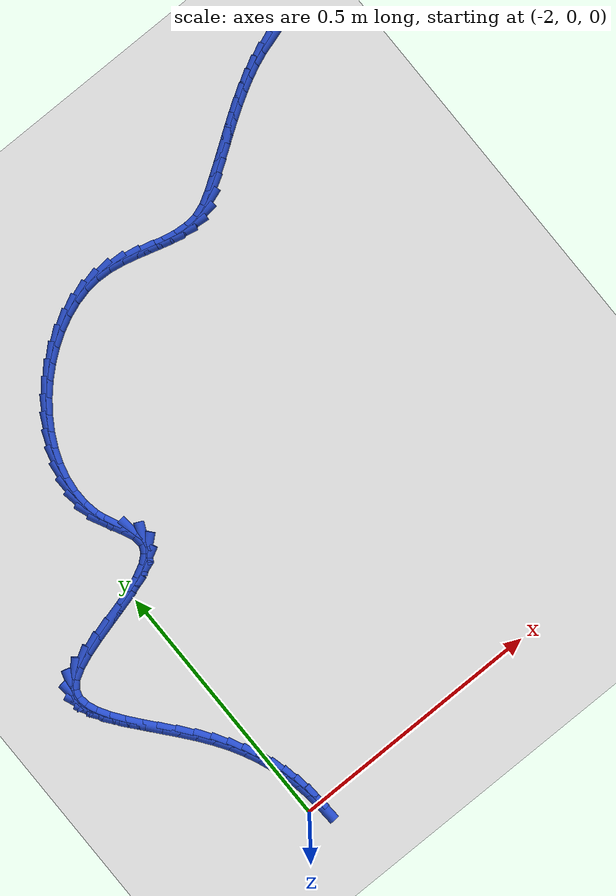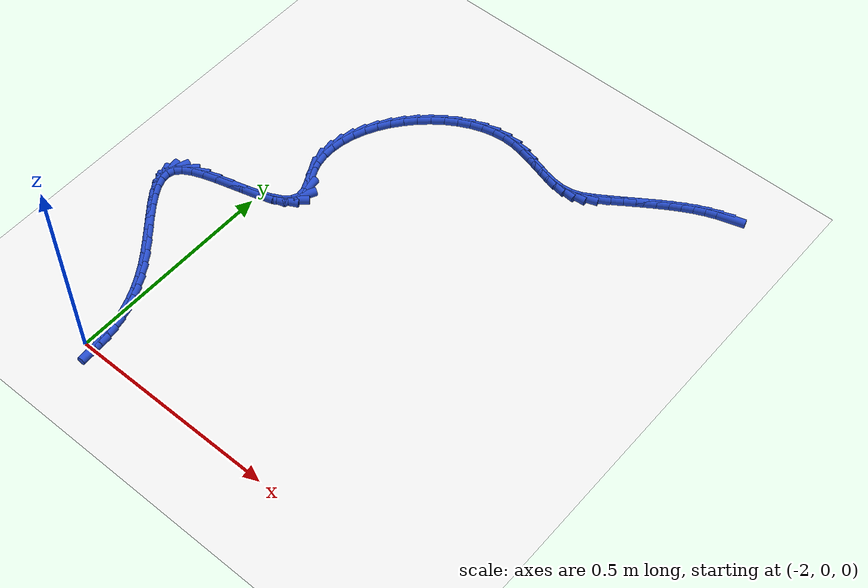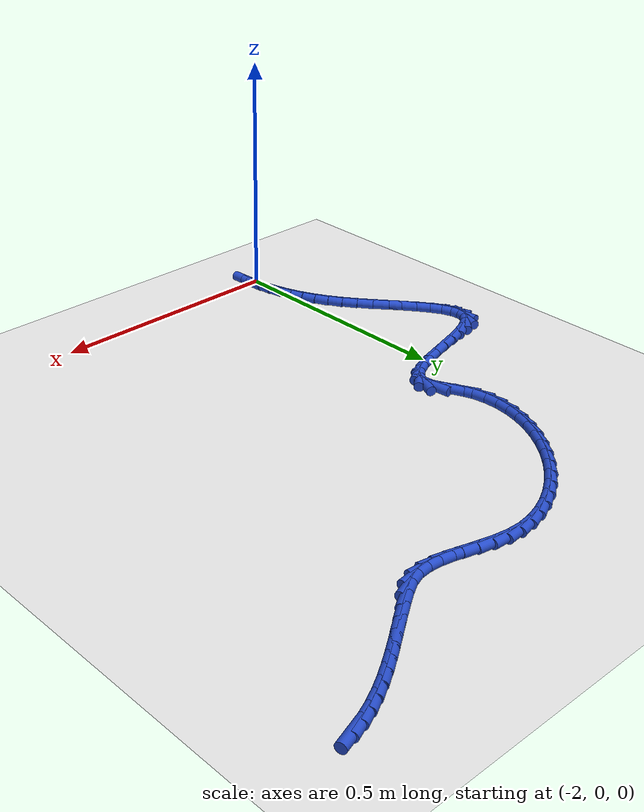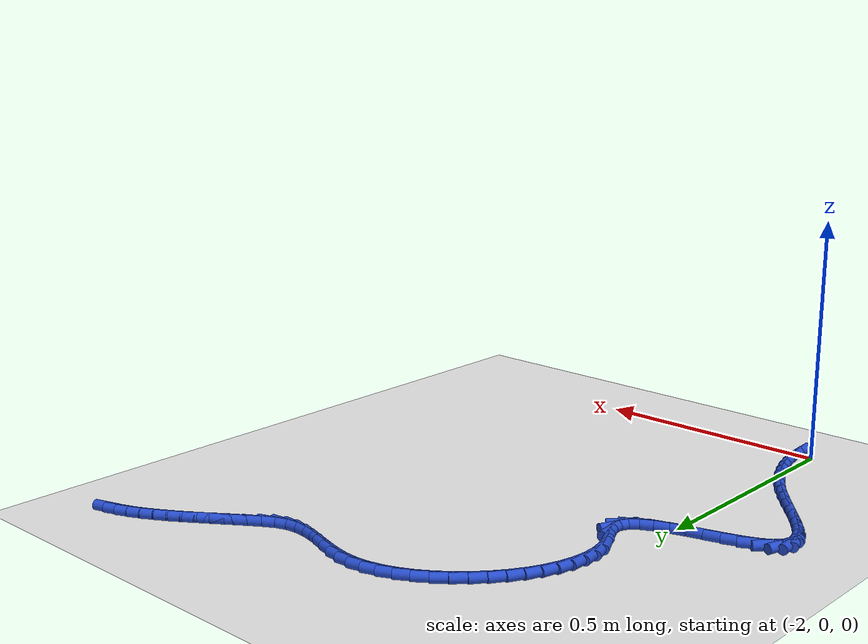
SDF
<sdf version="1.6">
 <world name="default">
  <model name="ground_plane">
   <static>1</static>
   <link name="link">
    <collision name="collision">
     <geometry><plane><normal>0 0 1</normal><size>100 100</size></plane></geometry>
     <surface><friction><ode><mu>100</mu><mu2>50</mu2></ode></friction></surface>
    </collision>
    <visual name="visual">
     <cast_shadows>0</cast_shadows>
     <geometry><plane><normal>0 0 1</normal><size>100 100</size></plane></geometry>
     <material>
      <script><uri>file://media/materials/scripts/gazebo.material</uri><name>Gazebo/WhiteGlow</name></script>
     </material>
    </visual>
   </link>
  </model>
  <model name="line">
   <link name="link_69">
    <pose>-1.1655451225710551 1.1368017881566346 0.01 0 1.57 0.2939769712846466</pose>
    <collision name="collision">
     <geometry><cylinder><radius>0.01</radius><length>0.08</length></cylinder></geometry>
    </collision>
    <visual name="visual">
     <material>
      <script><name>Gazebo/Blue</name><uri>file://media/materials/scripts/gazebo.material</uri></script>
     </material>
     <geometry><cylinder><radius>0.01</radius><length>0.08</length></cylinder></geometry>
    </visual>
   </link>
   <link name="link_70">
    <pose>-1.1898532442997742 1.1294425267399657 0.01 0 1.57 0.37467345407495184</pose>
    <collision name="collision">
     <geometry><cylinder><radius>0.01</radius><length>0.08</length></cylinder></geometry>
    </collision>
    <visual name="visual">
     <material>
      <script><name>Gazebo/Blue</name><uri>file://media/materials/scripts/gazebo.material</uri></script>
     </material>
     <geometry><cylinder><radius>0.01</radius><length>0.08</length></cylinder></geometry>
    </visual>
   </link>
   <link name="link_71">
    <pose>-1.213981605350824 1.1199540612354015 0.01 0 1.57 0.4409842234390131</pose>
    <collision name="collision">
     <geometry><cylinder><radius>0.01</radius><length>0.08</length></cylinder></geometry>
    </collision>
    <visual name="visual">
     <material>
      <script><name>Gazebo/Blue</name><uri>file://media/materials/scripts/gazebo.material</uri></script>
     </material>
     <geometry><cylinder><radius>0.01</radius><length>0.08</length></cylinder></geometry>
    </visual>
   </link>
   <link name="link_72">
    <pose>-1.23794146451762 1.1086454043363694 0.01 0 1.57 0.4940404494765025</pose>
    <collision name="collision">
     <geometry><cylinder><radius>0.01</radius><length>0.08</length></cylinder></geometry>
    </collision>
    <visual name="visual">
     <material>
      <script><name>Gazebo/Blue</name><uri>file://media/materials/scripts/gazebo.material</uri></script>
     </material>
     <geometry><cylinder><radius>0.01</radius><length>0.08</length></cylinder></geometry>
    </visual>
   </link>
   <link name="link_73">
    <pose>-1.261744080593579 1.0958255687362972 0.01 0 1.57 0.535056958710037</pose>
    <collision name="collision">
     <geometry><cylinder><radius>0.01</radius><length>0.08</length></cylinder></geometry>
    </collision>
    <visual name="visual">
     <material>
      <script><name>Gazebo/Blue</name><uri>file://media/materials/scripts/gazebo.material</uri></script>
     </material>
     <geometry><cylinder><radius>0.01</radius><length>0.08</length></cylinder></geometry>
    </visual>
   </link>
   <link name="link_74">
    <pose>-1.2854007123721158 1.0818035671286133 0.01 0 1.57 0.5651137857989061</pose>
    <collision name="collision">
     <geometry><cylinder><radius>0.01</radius><length>0.08</length></cylinder></geometry>
    </collision>
    <visual name="visual">
     <material>
      <script><name>Gazebo/Blue</name><uri>file://media/materials/scripts/gazebo.material</uri></script>
     </material>
     <geometry><cylinder><radius>0.01</radius><length>0.08</length></cylinder></geometry>
    </visual>
   </link>
   <link name="link_75">
    <pose>-1.3089226186466474 1.0668884122067457 0.01 0 1.57 0.5850479629905182</pose>
    <collision name="collision">
     <geometry><cylinder><radius>0.01</radius><length>0.08</length></cylinder></geometry>
    </collision>
    <visual name="visual">
     <material>
      <script><name>Gazebo/Blue</name><uri>file://media/materials/scripts/gazebo.material</uri></script>
     </material>
     <geometry><cylinder><radius>0.01</radius><length>0.08</length></cylinder></geometry>
    </visual>
   </link>
   <link name="link_76">
    <pose>-1.332321058210589 1.051389116664122 0.01 0 1.57 0.5954063270164329</pose>
    <collision name="collision">
     <geometry><cylinder><radius>0.01</radius><length>0.08</length></cylinder></geometry>
    </collision>
    <visual name="visual">
     <material>
      <script><name>Gazebo/Blue</name><uri>file://media/materials/scripts/gazebo.material</uri></script>
     </material>
     <geometry><cylinder><radius>0.01</radius><length>0.08</length></cylinder></geometry>
    </visual>
   </link>
   <link name="link_77">
    <pose>-1.3556072898573572 1.0356146931941712 0.01 0 1.57 0.596425573063841</pose>
    <collision name="collision">
     <geometry><cylinder><radius>0.01</radius><length>0.08</length></cylinder></geometry>
    </collision>
    <visual name="visual">
     <material>
      <script><name>Gazebo/Blue</name><uri>file://media/materials/scripts/gazebo.material</uri></script>
     </material>
     <geometry><cylinder><radius>0.01</radius><length>0.08</length></cylinder></geometry>
    </visual>
   </link>
   <link name="link_78">
    <pose>-1.3787925723803678 1.0198741544903198 0.01 0 1.57 0.5880199827626478</pose>
    <collision name="collision">
     <geometry><cylinder><radius>0.01</radius><length>0.08</length></cylinder></geometry>
    </collision>
    <visual name="visual">
     <material>
      <script><name>Gazebo/Blue</name><uri>file://media/materials/scripts/gazebo.material</uri></script>
     </material>
     <geometry><cylinder><radius>0.01</radius><length>0.08</length></cylinder></geometry>
    </visual>
   </link>
   <link name="link_79">
    <pose>-1.4018881645730366 1.0044765132459972 0.01 0 1.57 0.5697676212457384</pose>
    <collision name="collision">
     <geometry><cylinder><radius>0.01</radius><length>0.08</length></cylinder></geometry>
    </collision>
    <visual name="visual">
     <material>
      <script><name>Gazebo/Blue</name><uri>file://media/materials/scripts/gazebo.material</uri></script>
     </material>
     <geometry><cylinder><radius>0.01</radius><length>0.08</length></cylinder></geometry>
    </visual>
   </link>
   <link name="link_80">
    <pose>-1.4249053252287789 0.9897307821546306 0.01 0 1.57 0.518687345700134</pose>
    <collision name="collision">
     <geometry><cylinder><radius>0.01</radius><length>0.08</length></cylinder></geometry>
    </collision>
    <visual name="visual">
     <material>
      <script><name>Gazebo/Blue</name><uri>file://media/materials/scripts/gazebo.material</uri></script>
     </material>
     <geometry><cylinder><radius>0.01</radius><length>0.08</length></cylinder></geometry>
    </visual>
   </link>
   <link name="link_81">
    <pose>-1.4479512978194276 0.976575676384733 0.01 0 1.57 0.328963398376115</pose>
    <collision name="collision">
     <geometry><cylinder><radius>0.01</radius><length>0.08</length></cylinder></geometry>
    </collision>
    <visual name="visual">
     <material>
      <script><name>Gazebo/Blue</name><uri>file://media/materials/scripts/gazebo.material</uri></script>
     </material>
     <geometry><cylinder><radius>0.01</radius><length>0.08</length></cylinder></geometry>
    </visual>
   </link>
   <link name="link_82">
    <pose>-1.4715387472456862 0.9685236981429537 0.01 0 1.57 0.09422918050708343</pose>
    <collision name="collision">
     <geometry><cylinder><radius>0.01</radius><length>0.08</length></cylinder></geometry>
    </collision>
    <visual name="visual">
     <material>
      <script><name>Gazebo/Blue</name><uri>file://media/materials/scripts/gazebo.material</uri></script>
     </material>
     <geometry><cylinder><radius>0.01</radius><length>0.08</length></cylinder></geometry>
    </visual>
   </link>
   <link name="link_83">
    <pose>-1.49585915958344 0.9662251986901429 0.01 0 1.57 -0.08604895369260444</pose>
    <collision name="collision">
     <geometry><cylinder><radius>0.01</radius><length>0.08</length></cylinder></geometry>
    </collision>
    <visual name="visual">
     <material>
      <script><name>Gazebo/Blue</name><uri>file://media/materials/scripts/gazebo.material</uri></script>
     </material>
     <geometry><cylinder><radius>0.01</radius><length>0.08</length></cylinder></geometry>
    </visual>
   </link>
   <link name="link_84">
    <pose>-1.5208667822480049 0.9683824053746972 0.01 0 1.57 -0.2037302960191665</pose>
    <collision name="collision">
     <geometry><cylinder><radius>0.01</radius><length>0.08</length></cylinder></geometry>
    </collision>
    <visual name="visual">
     <material>
      <script><name>Gazebo/Blue</name><uri>file://media/materials/scripts/gazebo.material</uri></script>
     </material>
     <geometry><cylinder><radius>0.01</radius><length>0.08</length></cylinder></geometry>
    </visual>
   </link>
   <link name="link_85">
    <pose>-1.546513847878247 0.9736810011993966 0.01 0 1.57 -0.265175040987169</pose>
    <collision name="collision">
     <geometry><cylinder><radius>0.01</radius><length>0.08</length></cylinder></geometry>
    </collision>
    <visual name="visual">
     <material>
      <script><name>Gazebo/Blue</name><uri>file://media/materials/scripts/gazebo.material</uri></script>
     </material>
     <geometry><cylinder><radius>0.01</radius><length>0.08</length></cylinder></geometry>
    </visual>
   </link>
   <link name="link_86">
    <pose>-1.5727525891130314 0.9808066691670201 0.01 0 1.57 -0.27782451920922663</pose>
    <collision name="collision">
     <geometry><cylinder><radius>0.01</radius><length>0.08</length></cylinder></geometry>
    </collision>
    <visual name="visual">
     <material>
      <script><name>Gazebo/Blue</name><uri>file://media/materials/scripts/gazebo.material</uri></script>
     </material>
     <geometry><cylinder><radius>0.01</radius><length>0.08</length></cylinder></geometry>
    </visual>
   </link>
   <link name="link_87">
    <pose>-1.5995352385912252 0.988445092280348 0.01 0 1.57 -0.24557075869494568</pose>
    <collision name="collision">
     <geometry><cylinder><radius>0.01</radius><length>0.08</length></cylinder></geometry>
    </collision>
    <visual name="visual">
     <material>
      <script><name>Gazebo/Blue</name><uri>file://media/materials/scripts/gazebo.material</uri></script>
     </material>
     <geometry><cylinder><radius>0.01</radius><length>0.08</length></cylinder></geometry>
    </visual>
   </link>
   <link name="link_88">
    <pose>-1.6268140289516935 0.9952819535421591 0.01 0 1.57 -0.1686482932324853</pose>
    <collision name="collision">
     <geometry><cylinder><radius>0.01</radius><length>0.08</length></cylinder></geometry>
    </collision>
    <visual name="visual">
     <material>
      <script><name>Gazebo/Blue</name><uri>file://media/materials/scripts/gazebo.material</uri></script>
     </material>
     <geometry><cylinder><radius>0.01</radius><length>0.08</length></cylinder></geometry>
    </visual>
   </link>
   <link name="link_89">
    <pose>-1.654541192833302 1.0000029359552334 0.01 0 1.57 -0.04618059004545107</pose>
    <collision name="collision">
     <geometry><cylinder><radius>0.01</radius><length>0.08</length></cylinder></geometry>
    </collision>
    <visual name="visual">
     <material>
      <script><name>Gazebo/Blue</name><uri>file://media/materials/scripts/gazebo.material</uri></script>
     </material>
     <geometry><cylinder><radius>0.01</radius><length>0.08</length></cylinder></geometry>
    </visual>
   </link>
   <link name="link_90">
    <pose>-1.6826675076257382 1.0013027499142875 0.01 0 1.57 0.09954961130455764</pose>
    <collision name="collision">
     <geometry><cylinder><radius>0.01</radius><length>0.08</length></cylinder></geometry>
    </collision>
    <visual name="visual">
     <material>
      <script><name>Gazebo/Blue</name><uri>file://media/materials/scripts/gazebo.material</uri></script>
     </material>
     <geometry><cylinder><radius>0.01</radius><length>0.08</length></cylinder></geometry>
    </visual>
   </link>
   <link name="link_91">
    <pose>-1.71104832216541 0.9984680806904148 0.01 0 1.57 0.2333295992190339</pose>
    <collision name="collision">
     <geometry><cylinder><radius>0.01</radius><length>0.08</length></cylinder></geometry>
    </collision>
    <visual name="visual">
     <material>
      <script><name>Gazebo/Blue</name><uri>file://media/materials/scripts/gazebo.material</uri></script>
     </material>
     <geometry><cylinder><radius>0.01</radius><length>0.08</length></cylinder></geometry>
    </visual>
   </link>
   <link name="link_92">
    <pose>-1.739386206889711 0.9917333484910373 0.01 0 1.57 0.3531602088894191</pose>
    <collision name="collision">
     <geometry><cylinder><radius>0.01</radius><length>0.08</length></cylinder></geometry>
    </collision>
    <visual name="visual">
     <material>
      <script><name>Gazebo/Blue</name><uri>file://media/materials/scripts/gazebo.material</uri></script>
     </material>
     <geometry><cylinder><radius>0.01</radius><length>0.08</length></cylinder></geometry>
    </visual>
   </link>
   <link name="link_93">
    <pose>-1.767370004587084 0.9814181306700768 0.01 0 1.57 0.4612096516597278</pose>
    <collision name="collision">
     <geometry><cylinder><radius>0.01</radius><length>0.08</length></cylinder></geometry>
    </collision>
    <visual name="visual">
     <material>
      <script><name>Gazebo/Blue</name><uri>file://media/materials/scripts/gazebo.material</uri></script>
     </material>
     <geometry><cylinder><radius>0.01</radius><length>0.08</length></cylinder></geometry>
    </visual>
   </link>
   <link name="link_94">
    <pose>-1.7946885580459717 0.9678420045814553 0.01 0 1.57 0.5600615036961315</pose>
    <collision name="collision">
     <geometry><cylinder><radius>0.01</radius><length>0.08</length></cylinder></geometry>
    </collision>
    <visual name="visual">
     <material>
      <script><name>Gazebo/Blue</name><uri>file://media/materials/scripts/gazebo.material</uri></script>
     </material>
     <geometry><cylinder><radius>0.01</radius><length>0.08</length></cylinder></geometry>
    </visual>
   </link>
   <link name="link_95">
    <pose>-1.8210307100548162 0.9513245475790943 0.01 0 1.57 0.6523380870185533</pose>
    <collision name="collision">
     <geometry><cylinder><radius>0.01</radius><length>0.08</length></cylinder></geometry>
    </collision>
    <visual name="visual">
     <material>
      <script><name>Gazebo/Blue</name><uri>file://media/materials/scripts/gazebo.material</uri></script>
     </material>
     <geometry><cylinder><radius>0.01</radius><length>0.08</length></cylinder></geometry>
    </visual>
   </link>
   <link name="link_96">
    <pose>-1.846085303402059 0.9321853370169165 0.01 0 1.57 0.7405593407867016</pose>
    <collision name="collision">
     <geometry><cylinder><radius>0.01</radius><length>0.08</length></cylinder></geometry>
    </collision>
    <visual name="visual">
     <material>
      <script><name>Gazebo/Blue</name><uri>file://media/materials/scripts/gazebo.material</uri></script>
     </material>
     <geometry><cylinder><radius>0.01</radius><length>0.08</length></cylinder></geometry>
    </visual>
   </link>
   <link name="link_97">
    <pose>-1.869541180876143 0.9107439502488438 0.01 0 1.57 0.8271346783970464</pose>
    <collision name="collision">
     <geometry><cylinder><radius>0.01</radius><length>0.08</length></cylinder></geometry>
    </collision>
    <visual name="visual">
     <material>
      <script><name>Gazebo/Blue</name><uri>file://media/materials/scripts/gazebo.material</uri></script>
     </material>
     <geometry><cylinder><radius>0.01</radius><length>0.08</length></cylinder></geometry>
    </visual>
   </link>
   <link name="link_98">
    <pose>-1.8910871852655105 0.8873199646287977 0.01 0 1.57 0.9144179799920921</pose>
    <collision name="collision">
     <geometry><cylinder><radius>0.01</radius><length>0.08</length></cylinder></geometry>
    </collision>
    <visual name="visual">
     <material>
      <script><name>Gazebo/Blue</name><uri>file://media/materials/scripts/gazebo.material</uri></script>
     </material>
     <geometry><cylinder><radius>0.01</radius><length>0.08</length></cylinder></geometry>
    </visual>
   </link>
   <link name="link_99">
    <pose>-1.910412159358603 0.8622329575107003 0.01 0 1.57 1.0047835370789457</pose>
    <collision name="collision">
     <geometry><cylinder><radius>0.01</radius><length>0.08</length></cylinder></geometry>
    </collision>
    <visual name="visual">
     <material>
      <script><name>Gazebo/Blue</name><uri>file://media/materials/scripts/gazebo.material</uri></script>
     </material>
     <geometry><cylinder><radius>0.01</radius><length>0.08</length></cylinder></geometry>
    </visual>
   </link>
   <link name="link_100">
    <pose>-1.927204945943863 0.8358025062484729 0.01 0 1.57 1.1006925471373743</pose>
    <collision name="collision">
     <geometry><cylinder><radius>0.01</radius><length>0.08</length></cylinder></geometry>
    </collision>
    <visual name="visual">
     <material>
      <script><name>Gazebo/Blue</name><uri>file://media/materials/scripts/gazebo.material</uri></script>
     </material>
     <geometry><cylinder><radius>0.01</radius><length>0.08</length></cylinder></geometry>
    </visual>
   </link>
   <link name="link_101">
    <pose>-1.941154387809733 0.8083481881960386 0.01 0 1.57 1.2047148218603356</pose>
    <collision name="collision">
     <geometry><cylinder><radius>0.01</radius><length>0.08</length></cylinder></geometry>
    </collision>
    <visual name="visual">
     <material>
      <script><name>Gazebo/Blue</name><uri>file://media/materials/scripts/gazebo.material</uri></script>
     </material>
     <geometry><cylinder><radius>0.01</radius><length>0.08</length></cylinder></geometry>
    </visual>
   </link>
   <link name="link_102">
    <pose>-1.9519493277446551 0.7801895807073188 0.01 0 1.57 1.319449130008604</pose>
    <collision name="collision">
     <geometry><cylinder><radius>0.01</radius><length>0.08</length></cylinder></geometry>
    </collision>
    <visual name="visual">
     <material>
      <script><name>Gazebo/Blue</name><uri>file://media/materials/scripts/gazebo.material</uri></script>
     </material>
     <geometry><cylinder><radius>0.01</radius><length>0.08</length></cylinder></geometry>
    </visual>
   </link>
   <link name="link_103">
    <pose>-1.9592786085370713 0.7516462611362353 0.01 0 1.57 1.4472533908960734</pose>
    <collision name="collision">
     <geometry><cylinder><radius>0.01</radius><length>0.08</length></cylinder></geometry>
    </collision>
    <visual name="visual">
     <material>
      <script><name>Gazebo/Blue</name><uri>file://media/materials/scripts/gazebo.material</uri></script>
     </material>
     <geometry><cylinder><radius>0.01</radius><length>0.08</length></cylinder></geometry>
    </visual>
   </link>
   <link name="link_104">
    <pose>-1.9628310729754244 0.7230378068367099 0.01 0 1.57 -1.5519120336382515</pose>
    <collision name="collision">
     <geometry><cylinder><radius>0.01</radius><length>0.08</length></cylinder></geometry>
    </collision>
    <visual name="visual">
     <material>
      <script><name>Gazebo/Blue</name><uri>file://media/materials/scripts/gazebo.material</uri></script>
     </material>
     <geometry><cylinder><radius>0.01</radius><length>0.08</length></cylinder></geometry>
    </visual>
   </link>
   <link name="link_105">
    <pose>-1.962295563848156 0.6946837951626652 0.01 0 1.57 -1.3949971643713512</pose>
    <collision name="collision">
     <geometry><cylinder><radius>0.01</radius><length>0.08</length></cylinder></geometry>
    </collision>
    <visual name="visual">
     <material>
      <script><name>Gazebo/Blue</name><uri>file://media/materials/scripts/gazebo.material</uri></script>
     </material>
     <geometry><cylinder><radius>0.01</radius><length>0.08</length></cylinder></geometry>
    </visual>
   </link>
   <link name="link_106">
    <pose>-1.9573609239437078 0.6669038034680224 0.01 0 1.57 -1.2264577362116644</pose>
    <collision name="collision">
     <geometry><cylinder><radius>0.01</radius><length>0.08</length></cylinder></geometry>
    </collision>
    <visual name="visual">
     <material>
      <script><name>Gazebo/Blue</name><uri>file://media/materials/scripts/gazebo.material</uri></script>
     </material>
     <geometry><cylinder><radius>0.01</radius><length>0.08</length></cylinder></geometry>
    </visual>
   </link>
   <link name="link_107">
    <pose>-1.9477188604504883 0.6400176700985558 0.01 0 1.57 -1.0990355302838246</pose>
    <collision name="collision">
     <geometry><cylinder><radius>0.01</radius><length>0.08</length></cylinder></geometry>
    </collision>
    <visual name="visual">
     <material>
      <script><name>Gazebo/Blue</name><uri>file://media/materials/scripts/gazebo.material</uri></script>
     </material>
     <geometry><cylinder><radius>0.01</radius><length>0.08</length></cylinder></geometry>
    </visual>
   </link>
   <link name="link_108">
    <pose>-1.934697279081168 0.6144943167989947 0.01 0 1.57 -1.1400919778838292</pose>
    <collision name="collision">
     <geometry><cylinder><radius>0.01</radius><length>0.08</length></cylinder></geometry>
    </collision>
    <visual name="visual">
     <material>
      <script><name>Gazebo/Blue</name><uri>file://media/materials/scripts/gazebo.material</uri></script>
     </material>
     <geometry><cylinder><radius>0.01</radius><length>0.08</length></cylinder></geometry>
    </visual>
   </link>
   <link name="link_109">
    <pose>-1.923994557069591 0.5912008839530375 0.01 0 1.57 -1.4611575829387826</pose>
    <collision name="collision">
     <geometry><cylinder><radius>0.01</radius><length>0.08</length></cylinder></geometry>
    </collision>
    <visual name="visual">
     <material>
      <script><name>Gazebo/Blue</name><uri>file://media/materials/scripts/gazebo.material</uri></script>
     </material>
     <geometry><cylinder><radius>0.01</radius><length>0.08</length></cylinder></geometry>
    </visual>
   </link>
   <link name="link_110">
    <pose>-1.9217734975201894 0.5710241398388773 0.01 0 1.57 1.123895006884266</pose>
    <collision name="collision">
     <geometry><cylinder><radius>0.01</radius><length>0.08</length></cylinder></geometry>
    </collision>
    <visual name="visual">
     <material>
      <script><name>Gazebo/Blue</name><uri>file://media/materials/scripts/gazebo.material</uri></script>
     </material>
     <geometry><cylinder><radius>0.01</radius><length>0.08</length></cylinder></geometry>
    </visual>
   </link>
   <link name="link_111">
    <pose>-1.9298939745244728 0.5540796164293498 0.01 0 1.57 0.7040156931521865</pose>
    <collision name="collision">
     <geometry><cylinder><radius>0.01</radius><length>0.08</length></cylinder></geometry>
    </collision>
    <visual name="visual">
     <material>
      <script><name>Gazebo/Blue</name><uri>file://media/materials/scripts/gazebo.material</uri></script>
     </material>
     <geometry><cylinder><radius>0.01</radius><length>0.08</length></cylinder></geometry>
    </visual>
   </link>
   <link name="link_112">
    <pose>-1.9466568827741748 0.5398449513432632 0.01 0 1.57 0.4726487331355522</pose>
    <collision name="collision">
     <geometry><cylinder><radius>0.01</radius><length>0.08</length></cylinder></geometry>
    </collision>
    <visual name="visual">
     <material>
      <script><name>Gazebo/Blue</name><uri>file://media/materials/scripts/gazebo.material</uri></script>
     </material>
     <geometry><cylinder><radius>0.01</radius><length>0.08</length></cylinder></geometry>
    </visual>
   </link>
   <link name="link_113">
    <pose>-1.9702561140965822 0.5277786035205327 0.01 0 1.57 0.3496611597091985</pose>
    <collision name="collision">
     <geometry><cylinder><radius>0.01</radius><length>0.08</length></cylinder></geometry>
    </collision>
    <visual name="visual">
     <material>
      <script><name>Gazebo/Blue</name><uri>file://media/materials/scripts/gazebo.material</uri></script>
     </material>
     <geometry><cylinder><radius>0.01</radius><length>0.08</length></cylinder></geometry>
    </visual>
   </link>
   <link name="link_114">
    <pose>-1.9988855603189797 0.5173390319010741 0.01 0 1.57 0.28563659882986964</pose>
    <collision name="collision">
     <geometry><cylinder><radius>0.01</radius><length>0.08</length></cylinder></geometry>
    </collision>
    <visual name="visual">
     <material>
      <script><name>Gazebo/Blue</name><uri>file://media/materials/scripts/gazebo.material</uri></script>
     </material>
     <geometry><cylinder><radius>0.01</radius><length>0.08</length></cylinder></geometry>
    </visual>
   </link>
   <link name="link_115">
    <pose>-2.0307391132686536 0.5079846954248023 0.01 0 1.57 0.25886826912258926</pose>
    <collision name="collision">
     <geometry><cylinder><radius>0.01</radius><length>0.08</length></cylinder></geometry>
    </collision>
    <visual name="visual">
     <material>
      <script><name>Gazebo/Blue</name><uri>file://media/materials/scripts/gazebo.material</uri></script>
     </material>
     <geometry><cylinder><radius>0.01</radius><length>0.08</length></cylinder></geometry>
    </visual>
   </link>
   <link name="link_116">
    <pose>-2.0640106647728906 0.4991740530316324 0.01 0 1.57 0.2617255496429029</pose>
    <collision name="collision">
     <geometry><cylinder><radius>0.01</radius><length>0.08</length></cylinder></geometry>
    </collision>
    <visual name="visual">
     <material>
      <script><name>Gazebo/Blue</name><uri>file://media/materials/scripts/gazebo.material</uri></script>
     </material>
     <geometry><cylinder><radius>0.01</radius><length>0.08</length></cylinder></geometry>
    </visual>
   </link>
   <link name="link_117">
    <pose>-2.096894106658976 0.49036556366148 0.01 0 1.57 0.29566982016643734</pose>
    <collision name="collision">
     <geometry><cylinder><radius>0.01</radius><length>0.08</length></cylinder></geometry>
    </collision>
    <visual name="visual">
     <material>
      <script><name>Gazebo/Blue</name><uri>file://media/materials/scripts/gazebo.material</uri></script>
     </material>
     <geometry><cylinder><radius>0.01</radius><length>0.08</length></cylinder></geometry>
    </visual>
   </link>
   <link name="link_118">
    <pose>-2.127583330754195 0.4810176862542604 0.01 0 1.57 0.37251078002937255</pose>
    <collision name="collision">
     <geometry><cylinder><radius>0.01</radius><length>0.08</length></cylinder></geometry>
    </collision>
    <visual name="visual">
     <material>
      <script><name>Gazebo/Blue</name><uri>file://media/materials/scripts/gazebo.material</uri></script>
     </material>
     <geometry><cylinder><radius>0.01</radius><length>0.08</length></cylinder></geometry>
    </visual>
   </link>
   <link name="link_119">
    <pose>-2.154272228885835 0.4705888797498886 0.01 0 1.57 0.5234112936865054</pose>
    <collision name="collision">
     <geometry><cylinder><radius>0.01</radius><length>0.08</length></cylinder></geometry>
    </collision>
    <visual name="visual">
     <material>
      <script><name>Gazebo/Blue</name><uri>file://media/materials/scripts/gazebo.material</uri></script>
     </material>
     <geometry><cylinder><radius>0.01</radius><length>0.08</length></cylinder></geometry>
    </visual>
   </link>
   <link name="link_120">
    <pose>-2.1751546928811805 0.45853760308828 0.01 0 1.57 0.8183890055640766</pose>
    <collision name="collision">
     <geometry><cylinder><radius>0.01</radius><length>0.08</length></cylinder></geometry>
    </collision>
    <visual name="visual">
     <material>
      <script><name>Gazebo/Blue</name><uri>file://media/materials/scripts/gazebo.material</uri></script>
     </material>
     <geometry><cylinder><radius>0.01</radius><length>0.08</length></cylinder></geometry>
    </visual>
   </link>
   <link name="link_121">
    <pose>-2.18845412920091 0.4443303691810085 0.01 0 1.57 1.270415243180447</pose>
    <collision name="collision">
     <geometry><cylinder><radius>0.01</radius><length>0.08</length></cylinder></geometry>
    </collision>
    <visual name="visual">
     <material>
      <script><name>Gazebo/Blue</name><uri>file://media/materials/scripts/gazebo.material</uri></script>
     </material>
     <geometry><cylinder><radius>0.01</radius><length>0.08</length></cylinder></geometry>
    </visual>
   </link>
   <link name="link_122">
    <pose>-2.1935870887834104 0.427759276952533 0.01 0 1.57 -1.4622061400930972</pose>
    <collision name="collision">
     <geometry><cylinder><radius>0.01</radius><length>0.08</length></cylinder></geometry>
    </collision>
    <visual name="visual">
     <material>
      <script><name>Gazebo/Blue</name><uri>file://media/materials/scripts/gazebo.material</uri></script>
     </material>
     <geometry><cylinder><radius>0.01</radius><length>0.08</length></cylinder></geometry>
    </visual>
   </link>
   <link name="link_123">
    <pose>-2.191547066357029 0.40904674273707436 0.01 0 1.57 -1.1957187787941763</pose>
    <collision name="collision">
     <geometry><cylinder><radius>0.01</radius><length>0.08</length></cylinder></geometry>
    </collision>
    <visual name="visual">
     <material>
      <script><name>Gazebo/Blue</name><uri>file://media/materials/scripts/gazebo.material</uri></script>
     </material>
     <geometry><cylinder><radius>0.01</radius><length>0.08</length></cylinder></geometry>
    </visual>
   </link>
   <link name="link_124">
    <pose>-2.1834357076771274 0.38844469518888863 0.01 0 1.57 -1.0391085865396663</pose>
    <collision name="collision">
     <geometry><cylinder><radius>0.01</radius><length>0.08</length></cylinder></geometry>
    </collision>
    <visual name="visual">
     <material>
      <script><name>Gazebo/Blue</name><uri>file://media/materials/scripts/gazebo.material</uri></script>
     </material>
     <geometry><cylinder><radius>0.01</radius><length>0.08</length></cylinder></geometry>
    </visual>
   </link>
   <link name="link_125">
    <pose>-2.170354658499071 0.36620506296223265 0.01 0 1.57 -0.9484789921358466</pose>
    <collision name="collision">
     <geometry><cylinder><radius>0.01</radius><length>0.08</length></cylinder></geometry>
    </collision>
    <visual name="visual">
     <material>
      <script><name>Gazebo/Blue</name><uri>file://media/materials/scripts/gazebo.material</uri></script>
     </material>
     <geometry><cylinder><radius>0.01</radius><length>0.08</length></cylinder></geometry>
    </visual>
   </link>
   <link name="link_126">
    <pose>-2.1534055645782226 0.3425797747113627 0.01 0 1.57 -0.8983183068813233</pose>
    <collision name="collision">
     <geometry><cylinder><radius>0.01</radius><length>0.08</length></cylinder></geometry>
    </collision>
    <visual name="visual">
     <material>
      <script><name>Gazebo/Blue</name><uri>file://media/materials/scripts/gazebo.material</uri></script>
     </material>
     <geometry><cylinder><radius>0.01</radius><length>0.08</length></cylinder></geometry>
    </visual>
   </link>
   <link name="link_127">
    <pose>-2.133690071669946 0.317820759090536 0.01 0 1.57 -0.8757611903492085</pose>
    <collision name="collision">
     <geometry><cylinder><radius>0.01</radius><length>0.08</length></cylinder></geometry>
    </collision>
    <visual name="visual">
     <material>
      <script><name>Gazebo/Blue</name><uri>file://media/materials/scripts/gazebo.material</uri></script>
     </material>
     <geometry><cylinder><radius>0.01</radius><length>0.08</length></cylinder></geometry>
    </visual>
   </link>
   <link name="link_128">
    <pose>-2.1123098255296058 0.2921799447540087 0.01 0 1.57 -0.874910827681184</pose>
    <collision name="collision">
     <geometry><cylinder><radius>0.01</radius><length>0.08</length></cylinder></geometry>
    </collision>
    <visual name="visual">
     <material>
      <script><name>Gazebo/Blue</name><uri>file://media/materials/scripts/gazebo.material</uri></script>
     </material>
     <geometry><cylinder><radius>0.01</radius><length>0.08</length></cylinder></geometry>
    </visual>
   </link>
   <link name="link_129">
    <pose>-2.090366471912563 0.2659092603560376 0.01 0 1.57 -0.8940926310855235</pose>
    <collision name="collision">
     <geometry><cylinder><radius>0.01</radius><length>0.08</length></cylinder></geometry>
    </collision>
    <visual name="visual">
     <material>
      <script><name>Gazebo/Blue</name><uri>file://media/materials/scripts/gazebo.material</uri></script>
     </material>
     <geometry><cylinder><radius>0.01</radius><length>0.08</length></cylinder></geometry>
    </visual>
   </link>
   <link name="link_130">
    <pose>-2.068961656574184 0.23926063455087934 0.01 0 1.57 -0.9348996864982628</pose>
    <collision name="collision">
     <geometry><cylinder><radius>0.01</radius><length>0.08</length></cylinder></geometry>
    </collision>
    <visual name="visual">
     <material>
      <script><name>Gazebo/Blue</name><uri>file://media/materials/scripts/gazebo.material</uri></script>
     </material>
     <geometry><cylinder><radius>0.01</radius><length>0.08</length></cylinder></geometry>
    </visual>
   </link>
   <link name="link_131">
    <pose>-2.0491970135524666 0.21248599356790676 0.01 0 1.57 -0.9969394716223107</pose>
    <collision name="collision">
     <geometry><cylinder><radius>0.01</radius><length>0.08</length></cylinder></geometry>
    </collision>
    <visual name="visual">
     <material>
      <script><name>Gazebo/Blue</name><uri>file://media/materials/scripts/gazebo.material</uri></script>
     </material>
     <geometry><cylinder><radius>0.01</radius><length>0.08</length></cylinder></geometry>
    </visual>
   </link>
   <link name="link_132">
    <pose>-2.031939217046058 0.18578863920342015 0.01 0 1.57 -1.0651322401546321</pose>
    <collision name="collision">
     <geometry><cylinder><radius>0.01</radius><length>0.08</length></cylinder></geometry>
    </collision>
    <visual name="visual">
     <material>
      <script><name>Gazebo/Blue</name><uri>file://media/materials/scripts/gazebo.material</uri></script>
     </material>
     <geometry><cylinder><radius>0.01</radius><length>0.08</length></cylinder></geometry>
    </visual>
   </link>
   <link name="link_133">
    <pose>-2.017216741083229 0.15919840953243225 0.01 0 1.57 -1.1347081747785044</pose>
    <collision name="collision">
     <geometry><cylinder><radius>0.01</radius><length>0.08</length></cylinder></geometry>
    </collision>
    <visual name="visual">
     <material>
      <script><name>Gazebo/Blue</name><uri>file://media/materials/scripts/gazebo.material</uri></script>
     </material>
     <geometry><cylinder><radius>0.01</radius><length>0.08</length></cylinder></geometry>
    </visual>
   </link>
   <link name="link_134">
    <pose>-2.0048712241420055 0.13270647741494132 0.01 0 1.57 -1.2045424889289884</pose>
    <collision name="collision">
     <geometry><cylinder><radius>0.01</radius><length>0.08</length></cylinder></geometry>
    </collision>
    <visual name="visual">
     <material>
      <script><name>Gazebo/Blue</name><uri>file://media/materials/scripts/gazebo.material</uri></script>
     </material>
     <geometry><cylinder><radius>0.01</radius><length>0.08</length></cylinder></geometry>
    </visual>
   </link>
   <link name="link_135">
    <pose>-1.9947443047004219 0.10630401571094526 0.01 0 1.57 -1.2734200767288493</pose>
    <collision name="collision">
     <geometry><cylinder><radius>0.01</radius><length>0.08</length></cylinder></geometry>
    </collision>
    <visual name="visual">
     <material>
      <script><name>Gazebo/Blue</name><uri>file://media/materials/scripts/gazebo.material</uri></script>
     </material>
     <geometry><cylinder><radius>0.01</radius><length>0.08</length></cylinder></geometry>
    </visual>
   </link>
   <link name="link_136">
    <pose>-1.986677621236506 0.07998219728044323 0.01 0 1.57 -1.3401266664619726</pose>
    <collision name="collision">
     <geometry><cylinder><radius>0.01</radius><length>0.08</length></cylinder></geometry>
    </collision>
    <visual name="visual">
     <material>
      <script><name>Gazebo/Blue</name><uri>file://media/materials/scripts/gazebo.material</uri></script>
     </material>
     <geometry><cylinder><radius>0.01</radius><length>0.08</length></cylinder></geometry>
    </visual>
   </link>
   <link name="link_137">
    <pose>-1.9805128122282896 0.05373219498343303 0.01 0 1.57 -1.4035382305563933</pose>
    <collision name="collision">
     <geometry><cylinder><radius>0.01</radius><length>0.08</length></cylinder></geometry>
    </collision>
    <visual name="visual">
     <material>
      <script><name>Gazebo/Blue</name><uri>file://media/materials/scripts/gazebo.material</uri></script>
     </material>
     <geometry><cylinder><radius>0.01</radius><length>0.08</length></cylinder></geometry>
    </visual>
   </link>
   <link name="link_138">
    <pose>-1.9760915161538009 0.027545181679912982 0.01 0 1.57 -1.4626914878928263</pose>
    <collision name="collision">
     <geometry><cylinder><radius>0.01</radius><length>0.08</length></cylinder></geometry>
    </collision>
    <visual name="visual">
     <material>
      <script><name>Gazebo/Blue</name><uri>file://media/materials/scripts/gazebo.material</uri></script>
     </material>
     <geometry><cylinder><radius>0.01</radius><length>0.08</length></cylinder></geometry>
    </visual>
   </link>
   <link name="link_139">
    <pose>-1.973255371491071 0.0014123302298813343 0.01 0 1.57 -1.5168246871392956</pose>
    <collision name="collision">
     <geometry><cylinder><radius>0.01</radius><length>0.08</length></cylinder></geometry>
    </collision>
    <visual name="visual">
     <material>
      <script><name>Gazebo/Blue</name><uri>file://media/materials/scripts/gazebo.material</uri></script>
     </material>
     <geometry><cylinder><radius>0.01</radius><length>0.08</length></cylinder></geometry>
    </visual>
   </link>
  </model>
 </world>
</sdf>
